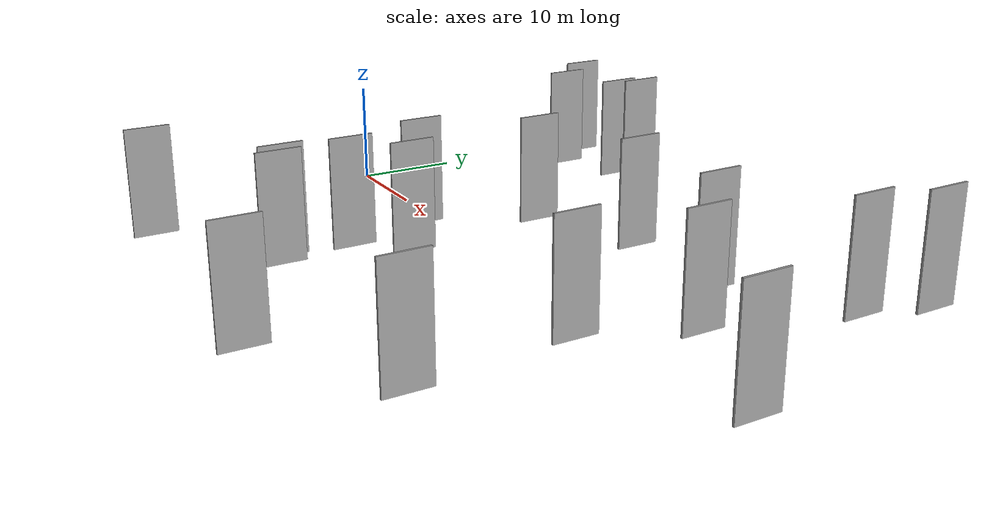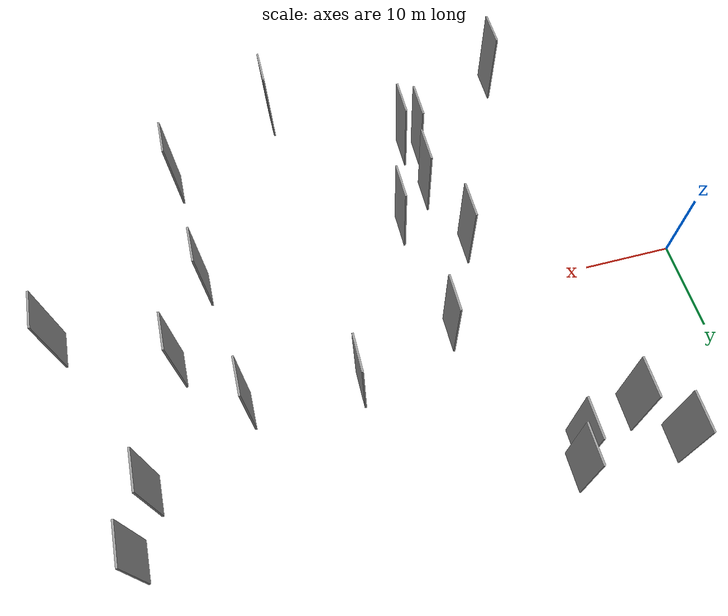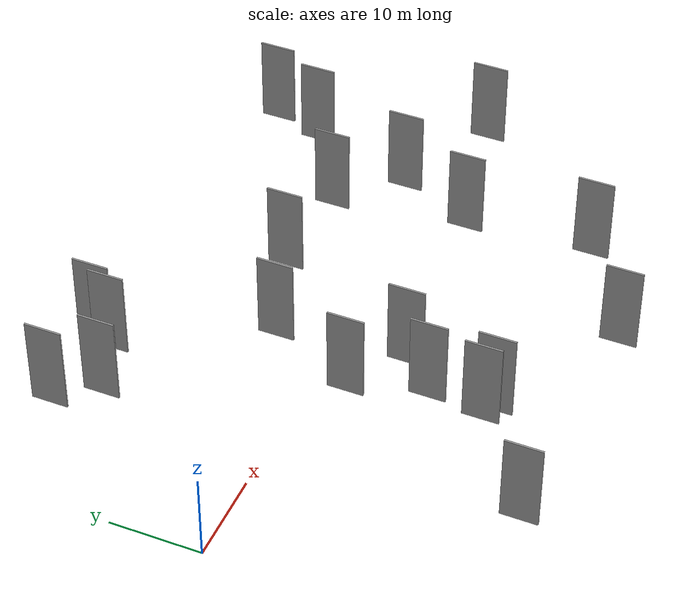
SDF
<sdf version="1.6">
 <world name="default">
  <scene>
   <sky><clouds><speed>12</speed></clouds></sky>
   <ambient>0.4 0.4 0.4 1</ambient>
   <background>0.7 0.7 0.7 1</background>
   <shadows>1</shadows>
  </scene>
  <gravity>0 0 -9.8066</gravity>
  <magnetic_field>6e-06 2.3e-05 -4.2e-05</magnetic_field>
  <physics default="0" name="default_physics" type="ode">
   <ode>
    <solver>
     <type>quick</type>
     <iters>10</iters>
     <sor>1.0</sor>
     <use_dynamic_moi_rescaling>0</use_dynamic_moi_rescaling>
    </solver>
    <constraints>
     <cfm>0</cfm>
     <erp>0.2</erp>
     <contact_max_correcting_vel>100</contact_max_correcting_vel>
     <contact_surface_layer>0.001</contact_surface_layer>
    </constraints>
   </ode>
   <max_step_size>0.004</max_step_size>
   <real_time_factor>1</real_time_factor>
   <real_time_update_rate>250</real_time_update_rate>
  </physics>
  <light name="sun" type="directional">
   <pose>0 0 10 0 0 0</pose>
   <diffuse>0.8 0.8 0.8 1</diffuse>
   <specular>0.2 0.2 0.2 1</specular>
   <attenuation>
    <range>1000</range>
    <constant>0.9</constant>
    <linear>0.01</linear>
    <quadratic>0.001</quadratic>
   </attenuation>
   <direction>-0.5 0.1 -0.9</direction>
  </light>
  <model name="grey_wall_1">
   <static>1</static>
   <pose>13.4826 17.7046 2.5 0.000000 0.000000 1.570796</pose>
   <link name="link">
    <pose>0 0 5.00 0 0 0</pose>
    <collision name="collision"><geometry><box><size>4.00 0.2 10.00</size></box></geometry></collision>
    <visual name="visual">
     <cast_shadows>0</cast_shadows>
     <geometry><box><size>4.00 0.2 10.00</size></box></geometry>
     <material>
      <script>
       <uri>model://grey_wall/materials/scripts</uri>
       <uri>model://grey_wall/materials/textures</uri>
       <name>vrc/grey_wall</name>
      </script>
     </material>
    </visual>
   </link>
  </model>
  <model name="grey_wall_2">
   <static>1</static>
   <pose>49.8668 8.0611 2.5 0.000000 0.000000 1.570796</pose>
   <link name="link">
    <pose>0 0 5.00 0 0 0</pose>
    <collision name="collision"><geometry><box><size>4.00 0.2 10.00</size></box></geometry></collision>
    <visual name="visual">
     <cast_shadows>0</cast_shadows>
     <geometry><box><size>4.00 0.2 10.00</size></box></geometry>
     <material>
      <script>
       <uri>model://grey_wall/materials/scripts</uri>
       <uri>model://grey_wall/materials/textures</uri>
       <name>vrc/grey_wall</name>
      </script>
     </material>
    </visual>
   </link>
  </model>
  <model name="grey_wall_3">
   <static>1</static>
   <pose>41.2540 -27.9300 2.5 0.000000 0.000000 1.570796</pose>
   <link name="link">
    <pose>0 0 5.00 0 0 0</pose>
    <collision name="collision"><geometry><box><size>4.00 0.2 10.00</size></box></geometry></collision>
    <visual name="visual">
     <cast_shadows>0</cast_shadows>
     <geometry><box><size>4.00 0.2 10.00</size></box></geometry>
     <material>
      <script>
       <uri>model://grey_wall/materials/scripts</uri>
       <uri>model://grey_wall/materials/textures</uri>
       <name>vrc/grey_wall</name>
      </script>
     </material>
    </visual>
   </link>
  </model>
  <model name="grey_wall_4">
   <static>1</static>
   <pose>59.8852 14.1902 2.5 0.000000 0.000000 1.570796</pose>
   <link name="link">
    <pose>0 0 5.00 0 0 0</pose>
    <collision name="collision"><geometry><box><size>4.00 0.2 10.00</size></box></geometry></collision>
    <visual name="visual">
     <cast_shadows>0</cast_shadows>
     <geometry><box><size>4.00 0.2 10.00</size></box></geometry>
     <material>
      <script>
       <uri>model://grey_wall/materials/scripts</uri>
       <uri>model://grey_wall/materials/textures</uri>
       <name>vrc/grey_wall</name>
      </script>
     </material>
    </visual>
   </link>
  </model>
  <model name="grey_wall_5">
   <static>1</static>
   <pose>10.2670 21.8854 2.5 0.000000 0.000000 1.570796</pose>
   <link name="link">
    <pose>0 0 5.00 0 0 0</pose>
    <collision name="collision"><geometry><box><size>4.00 0.2 10.00</size></box></geometry></collision>
    <visual name="visual">
     <cast_shadows>0</cast_shadows>
     <geometry><box><size>4.00 0.2 10.00</size></box></geometry>
     <material>
      <script>
       <uri>model://grey_wall/materials/scripts</uri>
       <uri>model://grey_wall/materials/textures</uri>
       <name>vrc/grey_wall</name>
      </script>
     </material>
    </visual>
   </link>
  </model>
  <model name="grey_wall_6">
   <static>1</static>
   <pose>26.9243 -19.5669 2.5 0.000000 0.000000 1.570796</pose>
   <link name="link">
    <pose>0 0 5.00 0 0 0</pose>
    <collision name="collision"><geometry><box><size>4.00 0.2 10.00</size></box></geometry></collision>
    <visual name="visual">
     <cast_shadows>0</cast_shadows>
     <geometry><box><size>4.00 0.2 10.00</size></box></geometry>
     <material>
      <script>
       <uri>model://grey_wall/materials/scripts</uri>
       <uri>model://grey_wall/materials/textures</uri>
       <name>vrc/grey_wall</name>
      </script>
     </material>
    </visual>
   </link>
  </model>
  <model name="grey_wall_7">
   <static>1</static>
   <pose>55.9556 1.8816 2.5 0.000000 0.000000 1.570796</pose>
   <link name="link">
    <pose>0 0 5.00 0 0 0</pose>
    <collision name="collision"><geometry><box><size>4.00 0.2 10.00</size></box></geometry></collision>
    <visual name="visual">
     <cast_shadows>0</cast_shadows>
     <geometry><box><size>4.00 0.2 10.00</size></box></geometry>
     <material>
      <script>
       <uri>model://grey_wall/materials/scripts</uri>
       <uri>model://grey_wall/materials/textures</uri>
       <name>vrc/grey_wall</name>
      </script>
     </material>
    </visual>
   </link>
  </model>
  <model name="grey_wall_8">
   <static>1</static>
   <pose>23.5625 -4.7870 2.5 0.000000 0.000000 1.570796</pose>
   <link name="link">
    <pose>0 0 5.00 0 0 0</pose>
    <collision name="collision"><geometry><box><size>4.00 0.2 10.00</size></box></geometry></collision>
    <visual name="visual">
     <cast_shadows>0</cast_shadows>
     <geometry><box><size>4.00 0.2 10.00</size></box></geometry>
     <material>
      <script>
       <uri>model://grey_wall/materials/scripts</uri>
       <uri>model://grey_wall/materials/textures</uri>
       <name>vrc/grey_wall</name>
      </script>
     </material>
    </visual>
   </link>
  </model>
  <model name="grey_wall_9">
   <static>1</static>
   <pose>52.0628 -6.7810 2.5 0.000000 0.000000 1.570796</pose>
   <link name="link">
    <pose>0 0 5.00 0 0 0</pose>
    <collision name="collision"><geometry><box><size>4.00 0.2 10.00</size></box></geometry></collision>
    <visual name="visual">
     <cast_shadows>0</cast_shadows>
     <geometry><box><size>4.00 0.2 10.00</size></box></geometry>
     <material>
      <script>
       <uri>model://grey_wall/materials/scripts</uri>
       <uri>model://grey_wall/materials/textures</uri>
       <name>vrc/grey_wall</name>
      </script>
     </material>
    </visual>
   </link>
  </model>
  <model name="grey_wall_10">
   <static>1</static>
   <pose>25.2398 -18.7683 2.5 0.000000 0.000000 1.570796</pose>
   <link name="link">
    <pose>0 0 5.00 0 0 0</pose>
    <collision name="collision"><geometry><box><size>4.00 0.2 10.00</size></box></geometry></collision>
    <visual name="visual">
     <cast_shadows>0</cast_shadows>
     <geometry><box><size>4.00 0.2 10.00</size></box></geometry>
     <material>
      <script>
       <uri>model://grey_wall/materials/scripts</uri>
       <uri>model://grey_wall/materials/textures</uri>
       <name>vrc/grey_wall</name>
      </script>
     </material>
    </visual>
   </link>
  </model>
  <model name="grey_wall_11">
   <static>1</static>
   <pose>28.2113 5.0034 2.5 0.000000 0.000000 1.570796</pose>
   <link name="link">
    <pose>0 0 5.00 0 0 0</pose>
    <collision name="collision"><geometry><box><size>4.00 0.2 10.00</size></box></geometry></collision>
    <visual name="visual">
     <cast_shadows>0</cast_shadows>
     <geometry><box><size>4.00 0.2 10.00</size></box></geometry>
     <material>
      <script>
       <uri>model://grey_wall/materials/scripts</uri>
       <uri>model://grey_wall/materials/textures</uri>
       <name>vrc/grey_wall</name>
      </script>
     </material>
    </visual>
   </link>
  </model>
  <model name="grey_wall_12">
   <static>1</static>
   <pose>26.0227 -12.7369 2.5 0.000000 0.000000 1.570796</pose>
   <link name="link">
    <pose>0 0 5.00 0 0 0</pose>
    <collision name="collision"><geometry><box><size>4.00 0.2 10.00</size></box></geometry></collision>
    <visual name="visual">
     <cast_shadows>0</cast_shadows>
     <geometry><box><size>4.00 0.2 10.00</size></box></geometry>
     <material>
      <script>
       <uri>model://grey_wall/materials/scripts</uri>
       <uri>model://grey_wall/materials/textures</uri>
       <name>vrc/grey_wall</name>
      </script>
     </material>
    </visual>
   </link>
  </model>
  <model name="grey_wall_13">
   <static>1</static>
   <pose>19.7957 19.9753 2.5 0.000000 0.000000 1.570796</pose>
   <link name="link">
    <pose>0 0 5.00 0 0 0</pose>
    <collision name="collision"><geometry><box><size>4.00 0.2 10.00</size></box></geometry></collision>
    <visual name="visual">
     <cast_shadows>0</cast_shadows>
     <geometry><box><size>4.00 0.2 10.00</size></box></geometry>
     <material>
      <script>
       <uri>model://grey_wall/materials/scripts</uri>
       <uri>model://grey_wall/materials/textures</uri>
       <name>vrc/grey_wall</name>
      </script>
     </material>
    </visual>
   </link>
  </model>
  <model name="grey_wall_14">
   <static>1</static>
   <pose>38.6927 8.6469 2.5 0.000000 0.000000 1.570796</pose>
   <link name="link">
    <pose>0 0 5.00 0 0 0</pose>
    <collision name="collision"><geometry><box><size>4.00 0.2 10.00</size></box></geometry></collision>
    <visual name="visual">
     <cast_shadows>0</cast_shadows>
     <geometry><box><size>4.00 0.2 10.00</size></box></geometry>
     <material>
      <script>
       <uri>model://grey_wall/materials/scripts</uri>
       <uri>model://grey_wall/materials/textures</uri>
       <name>vrc/grey_wall</name>
      </script>
     </material>
    </visual>
   </link>
  </model>
  <model name="grey_wall_15">
   <static>1</static>
   <pose>20.6790 22.1505 2.5 0.000000 0.000000 1.570796</pose>
   <link name="link">
    <pose>0 0 5.00 0 0 0</pose>
    <collision name="collision"><geometry><box><size>4.00 0.2 10.00</size></box></geometry></collision>
    <visual name="visual">
     <cast_shadows>0</cast_shadows>
     <geometry><box><size>4.00 0.2 10.00</size></box></geometry>
     <material>
      <script>
       <uri>model://grey_wall/materials/scripts</uri>
       <uri>model://grey_wall/materials/textures</uri>
       <name>vrc/grey_wall</name>
      </script>
     </material>
    </visual>
   </link>
  </model>
  <model name="grey_wall_16">
   <static>1</static>
   <pose>67.8141 -3.4992 2.5 0.000000 0.000000 1.570796</pose>
   <link name="link">
    <pose>0 0 5.00 0 0 0</pose>
    <collision name="collision"><geometry><box><size>4.00 0.2 10.00</size></box></geometry></collision>
    <visual name="visual">
     <cast_shadows>0</cast_shadows>
     <geometry><box><size>4.00 0.2 10.00</size></box></geometry>
     <material>
      <script>
       <uri>model://grey_wall/materials/scripts</uri>
       <uri>model://grey_wall/materials/textures</uri>
       <name>vrc/grey_wall</name>
      </script>
     </material>
    </visual>
   </link>
  </model>
  <model name="grey_wall_17">
   <static>1</static>
   <pose>61.7792 19.9285 2.5 0.000000 0.000000 1.570796</pose>
   <link name="link">
    <pose>0 0 5.00 0 0 0</pose>
    <collision name="collision"><geometry><box><size>4.00 0.2 10.00</size></box></geometry></collision>
    <visual name="visual">
     <cast_shadows>0</cast_shadows>
     <geometry><box><size>4.00 0.2 10.00</size></box></geometry>
     <material>
      <script>
       <uri>model://grey_wall/materials/scripts</uri>
       <uri>model://grey_wall/materials/textures</uri>
       <name>vrc/grey_wall</name>
      </script>
     </material>
    </visual>
   </link>
  </model>
  <model name="grey_wall_18">
   <static>1</static>
   <pose>14.0644 -26.9646 2.5 0.000000 0.000000 1.570796</pose>
   <link name="link">
    <pose>0 0 5.00 0 0 0</pose>
    <collision name="collision"><geometry><box><size>4.00 0.2 10.00</size></box></geometry></collision>
    <visual name="visual">
     <cast_shadows>0</cast_shadows>
     <geometry><box><size>4.00 0.2 10.00</size></box></geometry>
     <material>
      <script>
       <uri>model://grey_wall/materials/scripts</uri>
       <uri>model://grey_wall/materials/textures</uri>
       <name>vrc/grey_wall</name>
      </script>
     </material>
    </visual>
   </link>
  </model>
  <model name="grey_wall_19">
   <static>1</static>
   <pose>29.8783 -8.7936 2.5 0.000000 0.000000 1.570796</pose>
   <link name="link">
    <pose>0 0 5.00 0 0 0</pose>
    <collision name="collision"><geometry><box><size>4.00 0.2 10.00</size></box></geometry></collision>
    <visual name="visual">
     <cast_shadows>0</cast_shadows>
     <geometry><box><size>4.00 0.2 10.00</size></box></geometry>
     <material>
      <script>
       <uri>model://grey_wall/materials/scripts</uri>
       <uri>model://grey_wall/materials/textures</uri>
       <name>vrc/grey_wall</name>
      </script>
     </material>
    </visual>
   </link>
  </model>
  <model name="grey_wall_20">
   <static>1</static>
   <pose>53.3331 -20.8344 2.5 0.000000 0.000000 1.570796</pose>
   <link name="link">
    <pose>0 0 5.00 0 0 0</pose>
    <collision name="collision"><geometry><box><size>4.00 0.2 10.00</size></box></geometry></collision>
    <visual name="visual">
     <cast_shadows>0</cast_shadows>
     <geometry><box><size>4.00 0.2 10.00</size></box></geometry>
     <material>
      <script>
       <uri>model://grey_wall/materials/scripts</uri>
       <uri>model://grey_wall/materials/textures</uri>
       <name>vrc/grey_wall</name>
      </script>
     </material>
    </visual>
   </link>
  </model>
 </world>
</sdf>
